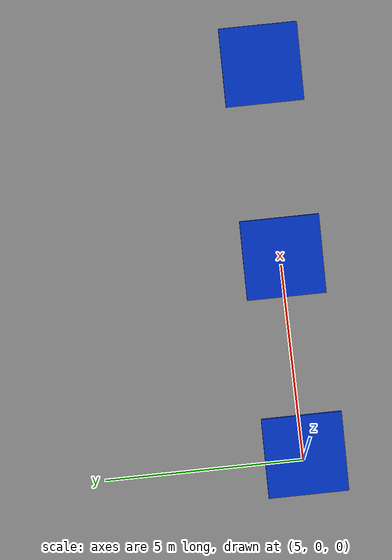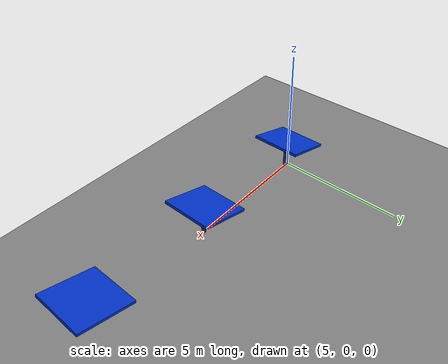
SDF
<?xml version="1.0" ?>
<sdf version="1.7">
  <world name="solar_farm">
    <physics name="1ms" type="ode">
      <max_step_size>0.002</max_step_size>
      <real_time_factor>1.0</real_time_factor>
    </physics>

    <scene>
      <ambient>0.6 0.6 0.6 1</ambient>
      <background>0.8 0.8 0.9 1</background>
      <shadows>false</shadows>
    </scene>

    <light type="directional" name="sun">
      <pose>0 0 10 0 0 0</pose>
      <diffuse>0.8 0.8 0.8 1</diffuse>
      <specular>0.2 0.2 0.2 1</specular>
      <direction>-0.5 0.5 -1.0</direction>
    </light>

    <model name="ground_plane">
      <static>true</static>
      <link name="link">
        <collision name="collision"><geometry><plane><normal>0 0 1</normal><size>100 100</size></plane></geometry></collision>
        <visual name="visual">
          <geometry><plane><normal>0 0 1</normal><size>100 100</size></plane></geometry>
          <material><ambient>0.5 0.5 0.5 1</ambient><diffuse>0.5 0.5 0.5 1</diffuse></material>
        </visual>
      </link>
    </model>

    <model name="panel_1">
      <static>true</static>
      <pose>5.0 0 1.2 0 -0.3 0</pose>
      <link name="plate">
        <collision name="c"><geometry><box><size>2.0 2.0 0.1</size></box></geometry></collision>
        <visual name="v"><geometry><box><size>2.0 2.0 0.1</size></box></geometry><material><ambient>0.0 0.2 0.8 1</ambient><diffuse>0.0 0.2 0.8 1</diffuse></material></visual>
      </link>
      <link name="mast">
        <pose>0 0 -0.6 0 0.3 0</pose>
        <visual name="v"><geometry><cylinder><radius>0.08</radius><length>1.2</length></cylinder></geometry><material><ambient>0.2 0.2 0.2 1</ambient></material></visual>
      </link>
    </model>

    <model name="panel_2">
      <static>true</static>
      <pose>10.0 0 1.2 0 -0.3 0</pose>
      <link name="plate">
        <collision name="c"><geometry><box><size>2.0 2.0 0.1</size></box></geometry></collision>
        <visual name="v"><geometry><box><size>2.0 2.0 0.1</size></box></geometry><material><ambient>0.0 0.2 0.8 1</ambient><diffuse>0.0 0.2 0.8 1</diffuse></material></visual>
      </link>
      <link name="mast">
        <pose>0 0 -0.6 0 0.3 0</pose>
        <visual name="v"><geometry><cylinder><radius>0.08</radius><length>1.2</length></cylinder></geometry><material><ambient>0.2 0.2 0.2 1</ambient></material></visual>
      </link>
    </model>

    <model name="panel_3">
      <static>true</static>
      <pose>15.0 0 1.2 0 -0.3 0</pose>
      <link name="plate">
        <collision name="c"><geometry><box><size>2.0 2.0 0.1</size></box></geometry></collision>
        <visual name="v"><geometry><box><size>2.0 2.0 0.1</size></box></geometry><material><ambient>0.0 0.2 0.8 1</ambient><diffuse>0.0 0.2 0.8 1</diffuse></material></visual>
      </link>
      <link name="mast">
        <pose>0 0 -0.6 0 0.3 0</pose>
        <visual name="v"><geometry><cylinder><radius>0.08</radius><length>1.2</length></cylinder></geometry><material><ambient>0.2 0.2 0.2 1</ambient></material></visual>
      </link>
    </model>
  </world>
</sdf>
